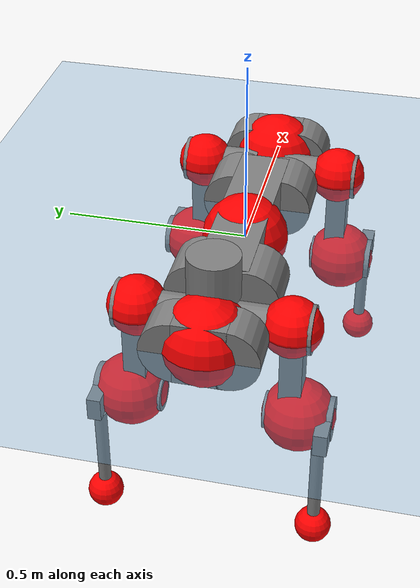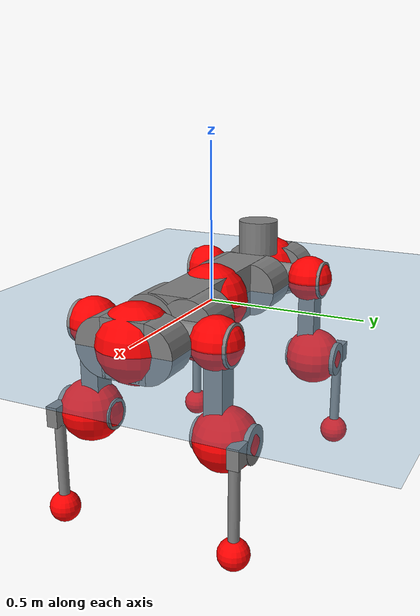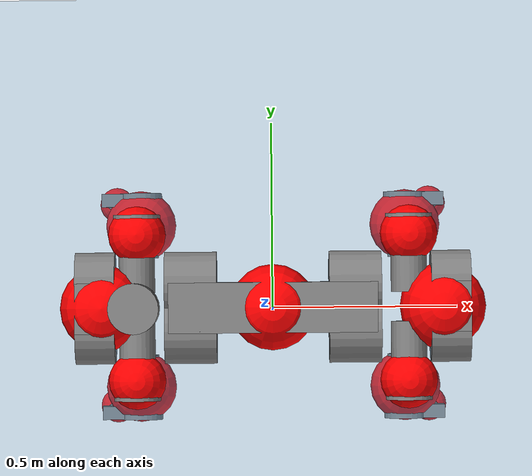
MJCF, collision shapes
<mujoco model="anymal_c">
  <compiler angle="radian" assetdir="assets" balanceinertia="true" inertiafromgeom="false"/>

  <option timestep="0.005" density="1.2" viscosity="2e-05"/>

  <size nkey="1"/>

  <visual>
    <quality shadowsize="8192"/>
    <map shadowclip="0.5"/>
  </visual>

  <default>
    <default class="/">
      <material specular="0" shininess="0.25"/>
      <geom contype="0" conaffinity="0" group="1" solref="-1000 -80"/>
      <site size="0.01 0.005 0.005" group="5"/>
      <general forcelimited="true" forcerange="-80 80" biastype="affine" gainprm="80" biasprm="0 -80 -2"/>
      <default class="anymal_c">
        <joint armature="0.01" damping="0.01" frictionloss="0.1"/>
        <default class="visual">
          <geom type="mesh" group="2"/>
          <default class="visual_zflip"/>
        </default>
        <default class="collision">
          <geom type="cylinder" group="3"/>
          <default class="foot">
            <geom size="0.03 0 0" type="sphere" condim="6" priority="1" friction="0.8 0.02 0.01" solimp="0.015 1 0.03"/>
          </default>
        </default>
      </default>
      <default class="reward_collision_sphere">
        <geom group="5" rgba="1 0 0 1"/>
      </default>
    </default>
  </default>

  <asset>
    <texture type="skybox" colorspace="auto" name="//unnamed_texture_0" builtin="gradient" rgb1="0.95 0.95 0.95" rgb2="0.95 0.95 0.95" width="100" height="600"/>
    <texture type="2d" colorspace="auto" name="texplane" builtin="checker" rgb1="0.345 0.575 0.748" rgb2="0.345 0.575 0.748" markrgb="1 1 1" width="512" height="512"/>
    <texture type="2d" colorspace="linear" name="base" file="base.png"/>
    <texture type="2d" colorspace="linear" name="top_shell" file="top_shell.png"/>
    <texture type="2d" colorspace="linear" name="bottom_shell" file="bottom_shell.png"/>
    <texture type="2d" colorspace="linear" name="remote" file="remote.png"/>
    <texture type="2d" colorspace="linear" name="hatch" file="hatch.png"/>
    <texture type="2d" colorspace="linear" name="handle" file="handle.png"/>
    <texture type="2d" colorspace="linear" name="face" file="face.png"/>
    <texture type="2d" colorspace="linear" name="battery" file="battery.png"/>
    <texture type="2d" colorspace="linear" name="lidar_cage" file="lidar_cage.png"/>
    <texture type="2d" colorspace="linear" name="depth_camera" file="depth_camera.png"/>
    <texture type="2d" colorspace="linear" name="wide_angle_camera" file="wide_angle_camera.png"/>
    <texture type="2d" colorspace="linear" name="lidar" file="lidar.png"/>
    <texture type="2d" colorspace="linear" name="drive" file="drive.png"/>
    <texture type="2d" colorspace="linear" name="hip_l" file="hip_l.png"/>
    <texture type="2d" colorspace="linear" name="shank_l" file="shank_l.png"/>
    <texture type="2d" colorspace="linear" name="foot" file="foot.png"/>
    <texture type="2d" colorspace="linear" name="thigh" file="thigh.png"/>
    <texture type="2d" colorspace="linear" name="shank_r" file="shank_r.png"/>
    <texture type="2d" colorspace="linear" name="hip_r" file="hip_r.png"/>
    <material name="MatPlane" class="/" texture="texplane" texuniform="true" texrepeat="2 2" specular="0.9" shininess="0.5"/>
    <material name="black_plastic" class="/" rgba="0.007 0.007 0.007 1"/>
    <material name="green" class="/" rgba="0.052 0.178 0.033 1"/>
    <material name="red" class="/" rgba="0.178 0.006 0.005 1"/>
    <material name="yellow" class="/" rgba="0.178 0.119 0.006 1"/>
    <material name="lwl" class="/" rgba="0.8 0.8 0.8 1"/>
    <material name="base" class="/" texture="base"/>
    <material name="top_shell" class="/" texture="top_shell"/>
    <material name="bottom_shell" class="/" texture="bottom_shell"/>
    <material name="hip_l" class="/" texture="hip_l"/>
    <material name="thigh" class="/" texture="thigh"/>
    <material name="shank_l" class="/" texture="shank_l"/>
    <material name="foot" class="/" texture="foot"/>
    <material name="hip_r" class="/" texture="hip_r"/>
    <material name="shank" class="/" texture="shank_r"/>
    <material name="hatch" class="/" texture="hatch"/>
    <material name="remote" class="/" texture="remote"/>
    <material name="handle" class="/" texture="handle"/>
    <material name="face" class="/" texture="face"/>
    <material name="depth_camera" class="/" texture="depth_camera"/>
    <material name="wide_angle_camera" class="/" texture="wide_angle_camera"/>
    <material name="battery" class="/" texture="battery"/>
    <material name="lidar_cage" class="/" texture="lidar_cage"/>
    <material name="lidar" class="/" texture="lidar"/>
    <material name="drive" class="/" texture="drive"/>
    <mesh name="base_0" class="/" file="base_0.obj"/>
    <mesh name="base_1" class="/" file="base_1.obj"/>
    <mesh name="base_2" class="/" file="base_2.obj"/>
    <mesh name="base_3" class="/" file="base_3.obj"/>
    <mesh name="base_4" class="/" file="base_4.obj"/>
    <mesh name="base_5" class="/" file="base_5.obj"/>
    <mesh name="top_shell" class="/" file="top_shell.obj"/>
    <mesh name="bottom_shell" class="/" file="bottom_shell.obj"/>
    <mesh name="remote" class="/" file="remote.obj"/>
    <mesh name="handle" class="/" file="handle.obj"/>
    <mesh name="face" class="/" file="face.obj"/>
    <mesh name="wide_angle_camera" class="/" file="wide_angle_camera.obj"/>
    <mesh name="depth_camera" class="/" file="depth_camera.obj"/>
    <mesh name="battery" class="/" file="battery.obj"/>
    <mesh name="lidar_cage" class="/" file="lidar_cage.obj"/>
    <mesh name="lidar" class="/" file="lidar.obj"/>
    <mesh name="drive" class="/" file="drive.obj"/>
    <mesh name="hip_l" class="/" file="hip_l.obj"/>
    <mesh name="thigh" class="/" file="thigh.obj"/>
    <mesh name="shank_l" class="/" file="shank_l.obj"/>
    <mesh name="foot" class="/" file="foot.obj"/>
    <mesh name="hip_r" class="/" file="hip_r.obj"/>
    <mesh name="hatch" class="/" file="hatch.obj"/>
    <mesh name="shank_r" class="/" file="shank_r.obj"/>
  </asset>

  <worldbody>
    <geom name="floor" class="/" size="100 100 0.125" type="plane" group="0" material="MatPlane"/>
    <light name="toplight_shadow" class="/" pos="0 0 5" dir="0.0990148 0.0990148 -0.990148" type="directional" ambient="0.04 0.04 0.04" diffuse="0.55 0.55 0.55" specular="0.12 0.12 0.12"/>
    <light name="toplight_fill" class="/" pos="0 0 5" dir="0.0990148 0.0990148 -0.990148" type="directional" castshadow="false" ambient="0.04 0.04 0.04" diffuse="0.3 0.3 0.3" specular="0.08 0.08 0.08"/>
    <body name="trunk" childclass="anymal_c" pos="0.000619734 0.000415196 0.000901463" quat="1 6.74889e-05 0.000398156 -0.000132152">
      <inertial pos="0.00336775 -0.000886899 0.0488892" quat="0.499881 0.500199 0.500009 0.499911" mass="17.923" diaginertia="0.743873 0.395145 0.212044"/>
      <joint name="//unnamed_joint_0" type="free" armature="0" damping="0" frictionloss="0"/>
      <geom name="//unnamed_geom_1" class="visual" material="green" mesh="base_0"/>
      <geom name="//unnamed_geom_2" class="visual" material="yellow" mesh="base_1"/>
      <geom name="//unnamed_geom_3" class="visual" material="red" mesh="base_2"/>
      <geom name="//unnamed_geom_4" class="visual" material="black_plastic" mesh="base_3"/>
      <geom name="//unnamed_geom_5" class="visual" material="lwl" mesh="base_4"/>
      <geom name="//unnamed_geom_6" class="visual" material="base" mesh="base_5"/>
      <geom name="trunk_1" class="collision" size="0.283113 0.0683375 0.0878625" type="box"/>
      <geom name="trunk_2" class="collision" size="0.0878625 0.0707782" pos="0.223371 0.0637773 0" quat="0.707107 0 0.707107 0"/>
      <geom name="trunk_3" class="collision" size="0.0878625 0.0707782" pos="-0.223371 0.0637773 0" quat="0.707107 0 0.707107 0"/>
      <geom name="trunk_4" class="collision" size="0.0878625 0.0707782" pos="0.223371 -0.0637773 0" quat="0.707107 0 0.707107 0"/>
      <geom name="trunk_5" class="collision" size="0.0878625 0.0707782" pos="-0.223371 -0.0637773 0" quat="0.707107 0 0.707107 0"/>
      <geom name="//unnamed_geom_12" class="visual" material="top_shell" mesh="top_shell"/>
      <geom name="//unnamed_geom_13" class="visual" material="bottom_shell" mesh="bottom_shell"/>
      <geom name="//unnamed_geom_14" class="visual" material="remote" mesh="remote"/>
      <geom name="//unnamed_geom_15" class="visual" material="handle" mesh="handle"/>
      <geom name="//unnamed_geom_16" class="visual" pos="0.425688 0 0" quat="1 0 0 0" material="face" mesh="face"/>
      <geom name="trunk_6" class="collision" size="0.0536938 0.0683375 0.0878625" pos="0.482172 0 0" type="box"/>
      <geom name="//unnamed_geom_18" class="collision" size="0.0878625 0.0536938" pos="0.482172 0.0637773 0" quat="0.707107 0 0.707107 0"/>
      <geom name="//unnamed_geom_19" class="collision" size="0.0878625 0.0536938" pos="0.482172 -0.0637773 0" quat="0.707107 0 0.707107 0"/>
      <geom name="//unnamed_geom_20" class="visual" pos="0.474109 0 -0.028651" quat="0.965926 0 0.258819 0" material="depth_camera" mesh="depth_camera"/>
      <geom name="//unnamed_geom_21" class="visual" pos="0.526846 0 0.0148301" material="wide_angle_camera" mesh="wide_angle_camera"/>
      <geom name="//unnamed_geom_22" class="visual_zflip" pos="-0.425688 0 0" quat="0 0 0 1" material="face" mesh="face"/>
      <geom name="trunk_7" class="collision" size="0.0536938 0.0683375 0.0878625" pos="-0.482172 0 0" quat="0 0 0 1" type="box"/>
      <geom name="//unnamed_geom_24" class="collision" size="0.0878625 0.0536938" pos="-0.482172 -0.0637773 0" quat="0 -0.707107 0 0.707107"/>
      <geom name="//unnamed_geom_25" class="collision" size="0.0878625 0.0536938" pos="-0.482172 0.0637773 0" quat="0 -0.707107 0 0.707107"/>
      <geom name="//unnamed_geom_26" class="visual" pos="-0.474109 0 -0.028651" quat="0 -0.258819 0 0.965926" material="depth_camera" mesh="depth_camera"/>
      <geom name="//unnamed_geom_27" class="visual_zflip" pos="-0.526846 0 0.0148301" quat="0 0 0 1" material="wide_angle_camera" mesh="wide_angle_camera"/>
      <geom name="//unnamed_geom_28" class="visual" material="battery" mesh="battery"/>
      <geom name="//unnamed_geom_29" class="visual" pos="0 0.0681409 0.0290547" quat="0.683013 -0.183013 0.183013 0.683013" material="depth_camera" mesh="depth_camera"/>
      <geom name="//unnamed_geom_30" class="visual" pos="0 -0.0681409 0.0290547" quat="0.683013 0.183013 0.183013 -0.683013" material="depth_camera" mesh="depth_camera"/>
      <geom name="//unnamed_geom_31" class="visual" pos="-0.373825 0 0.0728132" quat="1 0 0 0" material="lidar_cage" mesh="lidar_cage"/>
      <geom name="trunk_8" class="collision" size="0.0683375 0.058575" pos="-0.373825 0 0.132253"/>
      <geom name="//unnamed_geom_33" class="visual" pos="-0.373825 -4.55287e-05 0.140871" quat="0.707107 0 0 -0.707107" material="lidar" mesh="lidar"/>
      <geom name="//unnamed_geom_34" class="visual" pos="0.307995 0.0947831 -1.37227e-09" quat="0.258819 0.965926 0 0" material="drive" mesh="drive"/>
      <geom name="//unnamed_geom_35" class="visual" pos="0.307995 -0.0947831 1.37227e-09" quat="0.258819 -0.965926 0 0" material="drive" mesh="drive"/>
      <geom name="//unnamed_geom_36" class="visual" pos="-0.307995 0.0947831 1.37227e-09" quat="0 0 0.965926 -0.258819" material="drive" mesh="drive"/>
      <geom name="//unnamed_geom_37" class="visual" pos="-0.307995 -0.0947831 -1.37227e-09" quat="0 0 -0.965926 -0.258819" material="drive" mesh="drive"/>
      <geom name="//unnamed_geom_38" class="visual" pos="0.119131 0 0.0723179" quat="1 0 0 0" material="hatch" mesh="hatch"/>
      <geom name="//unnamed_geom_39" class="reward_collision_sphere" size="0.11715"/>
      <geom name="//unnamed_geom_40" class="reward_collision_sphere" size="0.11715" pos="0.462146 0 0"/>
      <geom name="//unnamed_geom_41" class="reward_collision_sphere" size="0.11715" pos="-0.462146 0 0"/>
      <site name="imu" pos="0.250855 0.00099889 0.0477907" size="0.0097625"/>
      <camera name="track" pos="0 -1.82221 0" quat="0.707107 0.707107 0 0" mode="trackcom"/>
      <camera name="ego_camera" pos="0.462146 0 -0.0396262" quat="-0.5 -0.5 0.5 0.5"/>
      <body name="LF_HIP" pos="0.308396 0.0948145 0.000595662" quat="0.259034 0.965868 0.000136152 0.000471874">
        <inertial pos="0.0591459 -0.0138583 -0.00823371" quat="-0.127822 0.708877 -0.137848 0.679818" mass="2.6109" diaginertia="0.00675344 0.00311202 0.0031301"/>
        <joint name="LF_HAA" pos="0 0 0" axis="0.999997 -0.0016601 0.0017934" range="-0.707715 0.491156" armature="0.00955202" damping="0.0106829" frictionloss="0.0953211"/>
        <geom name="//unnamed_geom_42" class="visual" pos="0 -8.07244e-05 1.32589e-05" quat="0.258819 -0.965926 0 0" material="hip_l" mesh="hip_l"/>
        <geom name="//unnamed_geom_43" class="visual" pos="0.0615168 -0.0730431 -0.0427599" quat="0.183013 -0.683013 0.683013 0.183013" material="drive" mesh="drive"/>
        <geom name="//unnamed_geom_44" class="collision" size="0.0488125 0.0683375" pos="0.0615168 -0.0108966 -0.00684048" quat="-0.353553 -0.612372 0.612372 -0.353553"/>
        <body name="LF_THIGH" pos="0.0618128 -0.0666101 -0.0401433" quat="0.182996 -0.68296 0.683055 0.183066">
          <inertial pos="0.032009 -0.000538503 -0.244671" quat="0.993193 -0.00508756 -0.080559 0.0839737" mass="2.82733" diaginertia="0.034637 0.0189111 0.00400179"/>
          <joint name="LF_HFE" pos="0 0 0" axis="0.999997 0.000947287 -0.00231747" range="-3.14109 3.1597" armature="0.010106" damping="0.00209991" frictionloss="0.0976707"/>
          <geom name="//unnamed_geom_45" class="visual" pos="0.00230569 3.63322e-06 0" quat="0.707107 0 0 -0.707107" material="thigh" mesh="thigh"/>
          <geom name="//unnamed_geom_46" class="collision" size="0.0634563 0.03905" pos="0.0410796 0 0" quat="0.5 0.5 -0.5 -0.5"/>
          <geom name="//unnamed_geom_47" class="collision" size="0.0366094 0.0292875 0.137958" pos="0.0308097 0 -0.139994" quat="0.707107 0 0 -0.707107" type="box"/>
          <geom name="//unnamed_geom_48" class="visual" pos="0.103007 0 -0.282337" quat="1 0 0 0" material="drive" mesh="drive"/>
          <geom name="//unnamed_geom_49" class="collision" size="0.0488125 0.0683375" pos="0.0311178 0 -0.282337" quat="0.707107 0 0.707107 0"/>
          <geom name="//unnamed_geom_50" class="reward_collision_sphere" size="0.0781" pos="0.0256748 0 0"/>
          <body name="LF_SHANK" pos="0.104471 0.000646959 -0.28302" quat="1 -4.72768e-05 -5.19744e-06 6.31997e-06">
            <inertial pos="0.00549465 -0.054873 -0.0806667" quat="0.992896 -0.116185 -0.00049558 -0.0256635" mass="0.551642" diaginertia="0.0115149 0.00577459 0.0010671"/>
            <joint name="LF_KFE" pos="0 0 0" axis="1 3.5151e-05 -1.99242e-05" range="-3.15607 3.13354" armature="0.00976523" damping="0.00947182" frictionloss="0.096186"/>
            <geom name="//unnamed_geom_51" class="visual" pos="0.000751834 0.00400882 0" quat="0.707107 0 0 -0.707107" material="shank_l" mesh="shank_l"/>
            <geom name="LF_kfe_act" class="collision" size="0.058575 0.019525" pos="0.0205398 0 0" quat="0.5 0.5 -0.5 -0.5"/>
            <geom name="//unnamed_geom_53" class="collision" size="0.0561334 0.0329485 0.0185488" pos="0.0205398 -0.0523876 0" quat="0.5 0.5 -0.5 -0.5" type="box"/>
            <geom name="//unnamed_geom_54" class="visual" pos="0.0134021 -0.0788398 -0.334812" quat="0.382683 0 0 -0.92388" material="foot" mesh="foot"/>
            <geom name="LF_calf" class="collision" size="0.0170844 0.137897" pos="0.0134022 -0.0801316 -0.167406" quat="0.707107 0 0 -0.707107"/>
            <geom name="LF_foot" class="foot" size="0.0287915" pos="0.0134022 -0.0801316 -0.312522" quat="0.707107 0 0 -0.707107"/>
            <geom name="//unnamed_geom_57" class="reward_collision_sphere" size="0.097625" pos="-0.0513496 0 0"/>
            <geom name="//unnamed_geom_58" class="reward_collision_sphere" size="0.0488125" pos="0.0134022 -0.0801316 -0.312522"/>
            <site name="LF_foot" class="foot" pos="0.0134022 -0.0801316 -0.312522" quat="0.707107 0 0 -0.707107" size="0.0097625"/>
          </body>
        </body>
      </body>
      <body name="RF_HIP" pos="0.307606 -0.0963604 0.000782226" quat="0.258786 -0.965935 1.0626e-05 -5.31604e-06">
        <inertial pos="0.0580637 0.0151089 -0.00825837" quat="0.133817 0.67939 0.130697 0.709535" mass="2.61812" diaginertia="0.00683849 0.00309465 0.0031913"/>
        <joint name="RF_HAA" pos="0 0 0" axis="0.999998 0.00180644 -0.000366075" range="-0.50387 0.715833" armature="0.0097666" damping="0.00847751" frictionloss="0.0964104"/>
        <geom name="//unnamed_geom_59" class="visual" pos="0 8.07238e-05 1.32589e-05" quat="0.258819 0.965926 0 0" material="hip_r" mesh="hip_r"/>
        <geom name="//unnamed_geom_60" class="visual" pos="0.0615168 0.0730431 -0.0427599" quat="0.183013 0.683013 0.683013 -0.183013" material="drive" mesh="drive"/>
        <geom name="//unnamed_geom_61" class="collision" size="0.0488125 0.0683375" pos="0.0615168 0.0108966 -0.00684048" quat="-0.353553 0.612372 0.612372 0.353553"/>
        <body name="RF_THIGH" pos="0.0609788 0.0658009 -0.0413072" quat="0.183014 0.683012 0.683013 -0.183012">
          <inertial pos="0.0317551 -0.00011602 -0.243987" quat="0.992876 0.0012395 -0.0823021 0.0861458" mass="2.88147" diaginertia="0.035287 0.0189308 0.0040275"/>
          <joint name="RF_HFE" pos="0 0 0" axis="1 3.69551e-05 0.000189304" stiffness="0.00588774" range="-3.15741 3.13532" armature="0.00988363" damping="0.00967393" frictionloss="0.0996846"/>
          <geom name="//unnamed_geom_62" class="visual" pos="0.00230569 3.63322e-06 0" quat="0.707107 0 0 -0.707107" material="thigh" mesh="thigh"/>
          <geom name="//unnamed_geom_63" class="collision" size="0.0634563 0.03905" pos="0.0410796 0 0" quat="0.5 0.5 0.5 0.5"/>
          <geom name="//unnamed_geom_64" class="collision" size="0.0366094 0.0292875 0.137958" pos="0.0308097 0 -0.139994" quat="0.707107 0 0 0.707107" type="box"/>
          <geom name="//unnamed_geom_65" class="visual" pos="0.103007 0 -0.282337" quat="1 0 0 0" material="drive" mesh="drive"/>
          <geom name="//unnamed_geom_66" class="collision" size="0.0488125 0.0683375" pos="0.0311178 0 -0.282337" quat="0.707107 0 0.707107 0"/>
          <geom name="//unnamed_geom_67" class="reward_collision_sphere" size="0.0781" pos="0.0256748 0 0"/>
          <body name="RF_SHANK" pos="0.102601 0.000436594 -0.282256" quat="1 1.36597e-06 2.13545e-06 -5.01285e-06">
            <inertial pos="0.00626932 0.0555592 -0.0782512" quat="0.993062 0.115722 -0.00158624 0.0208252" mass="0.540057" diaginertia="0.0113114 0.00578573 0.0010426"/>
            <joint name="RF_KFE" pos="0 0 0" axis="0.999998 9.00597e-05 -0.0017955" range="-3.13871 3.15545" armature="0.00951284" damping="0.00872057" frictionloss="0.097617"/>
            <geom name="//unnamed_geom_68" class="visual" pos="0.00075183 -0.00400881 0" quat="0.707107 0 0 0.707107" material="shank" mesh="shank_r"/>
            <geom name="RF_kfe_act" class="collision" size="0.058575 0.019525" pos="0.0205398 0 0" quat="0.5 0.5 0.5 0.5"/>
            <geom name="//unnamed_geom_70" class="collision" size="0.0561334 0.0329485 0.0185488" pos="0.0205398 0.0523876 0" quat="0.5 0.5 0.5 0.5" type="box"/>
            <geom name="//unnamed_geom_71" class="visual" pos="0.0134024 0.0788398 -0.334812" quat="0.382683 0 0 0.92388" material="foot" mesh="foot"/>
            <geom name="RF_calf" class="collision" size="0.0170844 0.137897" pos="0.0134022 0.0801316 -0.167406" quat="0.707107 0 0 0.707107"/>
            <geom name="RF_foot" class="foot" size="0.0294411" pos="0.0134022 0.0801316 -0.312522" quat="0.707107 0 0 0.707107"/>
            <geom name="//unnamed_geom_74" class="reward_collision_sphere" size="0.097625" pos="-0.0513496 0 0"/>
            <geom name="//unnamed_geom_75" class="reward_collision_sphere" size="0.0488125" pos="0.0134022 0.0801316 -0.312522"/>
            <site name="RF_foot" class="foot" pos="0.0134022 0.0801316 -0.312522" quat="0.707107 0 0 0.707107" size="0.0097625"/>
          </body>
        </body>
      </body>
      <body name="LH_HIP" pos="-0.30788 0.0956192 -4.77695e-05" quat="2.2284e-06 2.05059e-07 0.965924 -0.258825">
        <inertial pos="0.0585377 0.0137997 -0.00876859" quat="0.134773 0.679768 0.129334 0.709243" mass="2.59445" diaginertia="0.00668416 0.00310747 0.00312339"/>
        <joint name="LH_HAA" pos="0 0 0" axis="0.999999 -0.00106419 0.000566445" range="-0.471658 0.732576" armature="0.00972034" damping="0.013151" frictionloss="0.0998679"/>
        <geom name="//unnamed_geom_76" class="visual" pos="0 8.07238e-05 1.32589e-05" quat="-0.258819 -0.965926 0 0" material="hip_r" mesh="hip_r"/>
        <geom name="//unnamed_geom_77" class="visual" pos="0.0615168 0.0730431 -0.0427599" quat="0.183013 0.683013 0.683013 -0.183013" material="drive" mesh="drive"/>
        <geom name="//unnamed_geom_78" class="collision" size="0.0488125 0.0683375" pos="0.0615168 0.0108966 -0.00684048" quat="-0.353553 0.612372 0.612372 0.353553"/>
        <body name="LH_THIGH" pos="0.0607417 0.0655985 -0.0414243" quat="0.183164 0.683051 0.682909 -0.183105">
          <inertial pos="0.0314075 0.000324546 -0.244457" quat="0.992735 -0.00689832 -0.0814142 0.0883281" mass="2.81537" diaginertia="0.0339512 0.0185729 0.00393384"/>
          <joint name="LH_HFE" pos="0 0 0" axis="0.999997 0.00140107 0.00192939" stiffness="0.00286458" range="-3.15148 3.13036" armature="0.00953585" damping="0.00775393" frictionloss="0.0971696"/>
          <geom name="//unnamed_geom_79" class="visual" pos="0.00230569 3.63322e-06 0" quat="0.707107 0 0 -0.707107" material="thigh" mesh="thigh"/>
          <geom name="//unnamed_geom_80" class="collision" size="0.0634563 0.03905" pos="0.0410796 0 0" quat="0.5 0.5 -0.5 -0.5"/>
          <geom name="//unnamed_geom_81" class="collision" size="0.0366094 0.0292875 0.137958" pos="0.0308097 0 -0.139994" quat="0.707107 0 0 -0.707107" type="box"/>
          <geom name="//unnamed_geom_82" class="visual" pos="0.103007 0 -0.282337" quat="1 0 0 0" material="drive" mesh="drive"/>
          <geom name="//unnamed_geom_83" class="collision" size="0.0488125 0.0683375" pos="0.0311178 0 -0.282337" quat="0.707107 0 0.707107 0"/>
          <geom name="//unnamed_geom_84" class="reward_collision_sphere" size="0.0781" pos="0.0256748 0 0"/>
          <body name="LH_SHANK" pos="0.103757 -0.00129271 -0.282234" quat="1 2.03185e-06 5.354e-07 -3.93809e-06">
            <inertial pos="0.00467402 0.0566444 -0.080643" quat="0.992827 0.116832 -0.00151473 0.0253362" mass="0.550416" diaginertia="0.0116264 0.00575378 0.00107135"/>
            <joint name="LH_KFE" pos="0 0 0" axis="1 0.000546664 0.000509401" range="-3.14579 3.14024" armature="0.00998641" damping="0.0118142" frictionloss="0.0931507"/>
            <geom name="//unnamed_geom_85" class="visual" pos="0.00075183 -0.00400881 0" quat="-0.707107 0 0 -0.707107" material="shank" mesh="shank_r"/>
            <geom name="LH_kfe_act" class="collision" size="0.058575 0.019525" pos="0.0205398 0 0" quat="0.5 0.5 -0.5 -0.5"/>
            <geom name="//unnamed_geom_87" class="collision" size="0.0561334 0.0329485 0.0185488" pos="0.0205398 0.0523876 0" quat="0.5 0.5 -0.5 -0.5" type="box"/>
            <geom name="//unnamed_geom_88" class="visual" pos="0.0134024 0.0788398 -0.334812" quat="-0.382683 0 0 -0.92388" material="foot" mesh="foot"/>
            <geom name="LH_calf" class="collision" size="0.0170844 0.137897" pos="0.0134022 0.0801316 -0.167406" quat="0.707107 0 0 -0.707107"/>
            <geom name="LH_foot" class="foot" size="0.0308669" pos="0.0134022 0.0801316 -0.312522" quat="0.707107 0 0 -0.707107"/>
            <geom name="//unnamed_geom_91" class="reward_collision_sphere" size="0.097625" pos="-0.0513496 0 0"/>
            <geom name="//unnamed_geom_92" class="reward_collision_sphere" size="0.0488125" pos="0.0134022 0.0801316 -0.312522"/>
            <site name="LH_foot" class="foot" pos="0.0134022 0.0801316 -0.312522" quat="0.707107 0 0 -0.707107" size="0.0097625"/>
          </body>
        </body>
      </body>
      <body name="RH_HIP" pos="-0.307925 -0.0941048 0.000151878" quat="-0.000225821 -9.0557e-05 -0.965903 -0.258903">
        <inertial pos="0.0581967 -0.0137055 -0.00780895" quat="-0.127904 0.709861 -0.135063 0.679335" mass="2.52786" diaginertia="0.00655735 0.00302618 0.00309699"/>
        <joint name="RH_HAA" pos="0 0 0" axis="0.999999 -0.000997755 -0.00038582" range="-0.729399 0.496114" armature="0.010225" damping="0.00839504" frictionloss="0.0958142"/>
        <geom name="//unnamed_geom_93" class="visual" pos="0 -8.07244e-05 1.32589e-05" quat="-0.258819 0.965926 0 0" material="hip_l" mesh="hip_l"/>
        <geom name="//unnamed_geom_94" class="visual" pos="0.0615168 -0.0730431 -0.0427599" quat="-0.183013 0.683013 -0.683013 -0.183013" material="drive" mesh="drive"/>
        <geom name="//unnamed_geom_95" class="collision" size="0.0488125 0.0683375" pos="0.0615168 -0.0108966 -0.00684048" quat="0.353553 0.612372 -0.612372 0.353553"/>
        <body name="RH_THIGH" pos="0.0618257 -0.0661754 -0.0410907" quat="-0.182977 0.682977 -0.683067 -0.18298">
          <inertial pos="0.0327837 -0.000683308 -0.243242" quat="0.993157 -0.00529839 -0.0809677 0.0840018" mass="2.86453" diaginertia="0.0342497 0.0187826 0.00398908"/>
          <joint name="RH_HFE" pos="0 0 0" axis="0.999989 0.000378078 0.00457189" range="-3.15498 3.15421" armature="0.00965122" damping="0.00790215" frictionloss="0.0979261"/>
          <geom name="//unnamed_geom_96" class="visual" pos="0.00230569 3.63322e-06 0" quat="0.707107 0 0 -0.707107" material="thigh" mesh="thigh"/>
          <geom name="//unnamed_geom_97" class="collision" size="0.0634563 0.03905" pos="0.0410796 0 0" quat="0.5 0.5 0.5 0.5"/>
          <geom name="//unnamed_geom_98" class="collision" size="0.0366094 0.0292875 0.137958" pos="0.0308097 0 -0.139994" quat="0.707107 0 0 0.707107" type="box"/>
          <geom name="//unnamed_geom_99" class="visual" pos="0.103007 0 -0.282337" quat="1 0 0 0" material="drive" mesh="drive"/>
          <geom name="//unnamed_geom_100" class="collision" size="0.0488125 0.0683375" pos="0.0311178 0 -0.282337" quat="0.707107 0 0.707107 0"/>
          <geom name="//unnamed_geom_101" class="reward_collision_sphere" size="0.0781" pos="0.0256748 0 0"/>
          <body name="RH_SHANK" pos="0.10339 0.00076563 -0.282356" quat="1 -4.32809e-05 -0.000229157 -5.35306e-05">
            <inertial pos="0.00533521 -0.0556541 -0.0798094" quat="0.992787 -0.117114 -0.00297771 -0.0254877" mass="0.555818" diaginertia="0.0116555 0.00586064 0.00107459"/>
            <joint name="RH_KFE" pos="0 0 0" axis="0.999961 -0.0075482 0.00460374" range="-3.12916 3.1177" armature="0.0101346" damping="0" frictionloss="0.0971636"/>
            <geom name="//unnamed_geom_102" class="visual" pos="0.000751834 0.00400882 0" quat="0.707107 0 0 -0.707107" material="shank_l" mesh="shank_l"/>
            <geom name="RH_kfe_act" class="collision" size="0.058575 0.019525" pos="0.0205398 0 0" quat="0.5 0.5 0.5 0.5"/>
            <geom name="//unnamed_geom_104" class="collision" size="0.0561334 0.0329485 0.0185488" pos="0.0205398 -0.0523876 0" quat="0.5 0.5 0.5 0.5" type="box"/>
            <geom name="//unnamed_geom_105" class="visual" pos="0.0134021 -0.0788398 -0.334812" quat="0.382683 0 0 -0.92388" material="foot" mesh="foot"/>
            <geom name="RH_calf" class="collision" size="0.0170844 0.137897" pos="0.0134022 -0.0801316 -0.167406" quat="0.707107 0 0 0.707107"/>
            <geom name="RH_foot" class="foot" size="0.0285234" pos="0.0134022 -0.0801316 -0.312522" quat="0.707107 0 0 0.707107"/>
            <geom name="//unnamed_geom_108" class="reward_collision_sphere" size="0.097625" pos="-0.0513496 0 0"/>
            <geom name="//unnamed_geom_109" class="reward_collision_sphere" size="0.0488125" pos="0.0134022 -0.0801316 -0.312522"/>
            <site name="RH_foot" class="foot" pos="0.0134022 -0.0801316 -0.312522" quat="0.707107 0 0 0.707107" size="0.0097625"/>
          </body>
        </body>
      </body>
    </body>
  </worldbody>

  <contact>
    <pair class="/" geom1="floor" geom2="LF_foot" name="//unnamed_contact_0"/>
    <pair class="/" geom1="floor" geom2="RF_foot" name="//unnamed_contact_1"/>
    <pair class="/" geom1="floor" geom2="LH_foot" name="//unnamed_contact_2"/>
    <pair class="/" geom1="floor" geom2="RH_foot" name="//unnamed_contact_3"/>
  </contact>

  <actuator>
    <general name="LF_HAA" class="/" joint="LF_HAA" forcerange="-79.5646 79.5646" gainprm="81.123" biasprm="0 -81.123 -2.00552"/>
    <general name="LF_HFE" class="/" joint="LF_HFE" forcerange="-79.0126 79.0126" gainprm="81.123" biasprm="0 -81.123 -2.00552"/>
    <general name="LF_KFE" class="/" joint="LF_KFE" forcerange="-77.9242 77.9242" gainprm="81.123" biasprm="0 -81.123 -2.00552"/>
    <general name="RF_HAA" class="/" joint="RF_HAA" forcerange="-79.635 79.635" gainprm="81.123" biasprm="0 -81.123 -2.00552"/>
    <general name="RF_HFE" class="/" joint="RF_HFE" forcerange="-76.9646 76.9646" gainprm="81.123" biasprm="0 -81.123 -2.00552"/>
    <general name="RF_KFE" class="/" joint="RF_KFE" forcerange="-82.7403 82.7403" gainprm="81.123" biasprm="0 -81.123 -2.00552"/>
    <general name="LH_HAA" class="/" joint="LH_HAA" forcerange="-80.8804 80.8804" gainprm="81.123" biasprm="0 -81.123 -2.00552"/>
    <general name="LH_HFE" class="/" joint="LH_HFE" forcerange="-75.6452 75.6452" gainprm="81.123" biasprm="0 -81.123 -2.00552"/>
    <general name="LH_KFE" class="/" joint="LH_KFE" forcerange="-80.0969 80.0969" gainprm="81.123" biasprm="0 -81.123 -2.00552"/>
    <general name="RH_HAA" class="/" joint="RH_HAA" forcerange="-78.9114 78.9114" gainprm="81.123" biasprm="0 -81.123 -2.00552"/>
    <general name="RH_HFE" class="/" joint="RH_HFE" forcerange="-75.2092 75.2092" gainprm="81.123" biasprm="0 -81.123 -2.00552"/>
    <general name="RH_KFE" class="/" joint="RH_KFE" forcerange="-78.7844 78.7844" gainprm="81.123" biasprm="0 -81.123 -2.00552"/>
  </actuator>

  <sensor>
    <gyro site="imu" name="imu_angular_velocity"/>
    <velocimeter site="imu" name="imu_linear_velocity"/>
    <framelinvel objtype="site" objname="LF_foot" name="LF_foot_global_linear_velocity"/>
    <framelinvel objtype="site" objname="RF_foot" name="RF_foot_global_linear_velocity"/>
    <framelinvel objtype="site" objname="LH_foot" name="LH_foot_global_linear_velocity"/>
    <framelinvel objtype="site" objname="RH_foot" name="RH_foot_global_linear_velocity"/>
  </sensor>

  <keyframe>
    <key name="home" qpos="0 0 0.55 1 0 0 0 0 0.4 -0.8 0 -0.4 0.8 0 -0.4 0.8 0 0.4 -0.8"/>
  </keyframe>
</mujoco>
